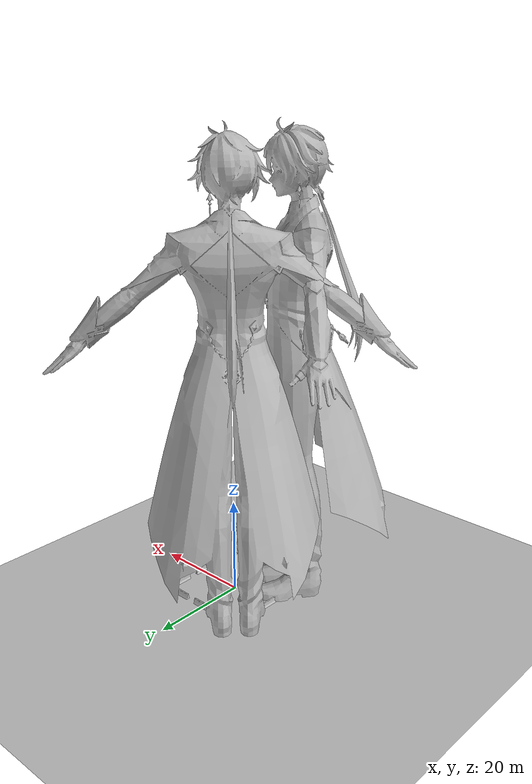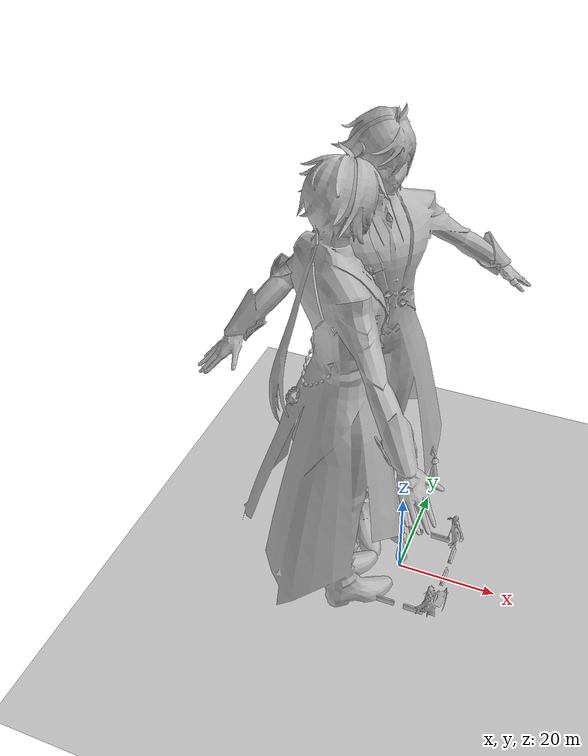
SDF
<sdf version="1.6">
 <world name="default">
  <physics name="default_physics" default="0" type="ode">
   <max_step_size>0.001</max_step_size>
   <real_time_factor>1</real_time_factor>
   <real_time_update_rate>1000</real_time_update_rate>
  </physics>
  <gravity>0.0 0.0 -9.81</gravity>
  <scene><ambient>1.0 1.0 1.0 1</ambient><background>1.0 1.0 1.0 1</background><shadows>0</shadows></scene>
  <include><uri>model://asphalt_plane</uri><name>asphalt_plane</name></include>
  <include>
   <uri>model://jersey_barrier</uri>
   <name>jersey_barrier_1</name>
   <pose>9.6 0.0 0.2 0 0 1.57</pose>
  </include>
  <include>
   <uri>model://jersey_barrier</uri>
   <name>jersey_barrier_2</name>
   <pose>9.6 -6.0 0.2 0 0 1.57</pose>
  </include>
  <include>
   <uri>model://jersey_barrier</uri>
   <name>jersey_barrier_3</name>
   <pose>9.6 6.0 0.2 0 0 1.57</pose>
  </include>
  <include>
   <uri>model://jersey_barrier</uri>
   <name>jersey_barrier_4</name>
   <pose>-9.6 0.0 0.2 0 0 1.57</pose>
  </include>
  <include>
   <uri>model://jersey_barrier</uri>
   <name>jersey_barrier_5</name>
   <pose>-9.6 -6.0 0.2 0 0 1.57</pose>
  </include>
  <include>
   <uri>model://jersey_barrier</uri>
   <name>jersey_barrier_6</name>
   <pose>-9.6 6.0 0.2 0 0 1.57</pose>
  </include>
  <include>
   <uri>model://jersey_barrier</uri>
   <name>jersey_barrier_7</name>
   <pose>0.0 9.6 0.2 0 0 0</pose>
  </include>
  <include>
   <uri>model://jersey_barrier</uri>
   <name>jersey_barrier_8</name>
   <pose>6.0 9.6 0.2 0 0 0</pose>
  </include>
  <include>
   <uri>model://jersey_barrier</uri>
   <name>jersey_barrier_9</name>
   <pose>-6.0 9.6 0.2 0 0 0</pose>
  </include>
  <include>
   <uri>model://jersey_barrier</uri>
   <name>jersey_barrier_10</name>
   <pose>0.0 -9.6 0.2 0 0 0</pose>
  </include>
  <include>
   <uri>model://jersey_barrier</uri>
   <name>jersey_barrier_11</name>
   <pose>6.0 -9.6 0.2 0 0 0</pose>
  </include>
  <include>
   <uri>model://jersey_barrier</uri>
   <name>jersey_barrier_12</name>
   <pose>-6.0 -9.6 0.2 0 0 0</pose>
  </include>
  <include><uri>model://zhongli</uri><name>zhongli</name><pose>9.0 9.0 0.05 0 0 -0.785</pose></include>
  <include>
   <uri>model://raiden_shogun</uri>
   <name>raiden_shogun</name>
   <pose>9.0 -9.0 0.05 0 0 3.25</pose>
  </include>
  <include><uri>model://furina</uri><name>furina_1</name><pose>-9.0 9.0 0.05 0 0 0.785</pose></include>
  <include><uri>model://nahida</uri><name>nahida</name><pose>-9.0 -9.0 0.05 0 0 2.355</pose></include>
  <light name="sun" type="directional">
   <cast_shadows>false</cast_shadows>
   <pose>0 0 10 0 0 0</pose>
   <diffuse>0.8 0.8 0.8 1</diffuse>
   <specular>0.2 0.2 0.2 1</specular>
   <attenuation>
    <range>1000</range>
    <constant>0.9</constant>
    <linear>0.01</linear>
    <quadratic>0.001</quadratic>
   </attenuation>
   <direction>-0.5 0.1 -0.9</direction>
  </light>
 </world>
</sdf>

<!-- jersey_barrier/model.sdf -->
<sdf version="1.5">
  <model name="jersey_barrier">
    <static>false</static>
    <link name="link">
      <inertial>
        <mass>2</mass>
        <inertia>
          <ixx>0.041666667</ixx>
          <ixy>0</ixy>
          <ixz>0</ixz>
          <iyy>0.056666667</iyy>
          <iyz>0</iyz>
          <izz>0.068333333</izz>
        </inertia>
      </inertial>
      <visual name="visual">
        <geometry>
          <mesh>
            <uri>meshes/jersey_barrier.dae</uri>
          </mesh>
        </geometry>
      </visual>
      <collision name="upright">
        <pose>0 0 0.5715 0 0 0</pose>
        <geometry>
          <box>
            <size>4.06542 0.3063 1.143</size>
          </box>
        </geometry>
      </collision>
      <collision name="base">
        <pose>0 0 0.032258 0 0 0</pose>
        <geometry>
          <box>
            <size>4.06542 0.8107 0.064516</size>
          </box>
        </geometry>
      </collision>
      <collision name="base2">
        <pose>0 0 0.1 0 0 0</pose>
        <geometry>
          <box>
            <size>4.06542 0.65 0.1</size>
          </box>
        </geometry>
      </collision>
      <collision name="base3">
        <pose>0 0 0.2 0 0 0</pose>
        <geometry>
          <box>
            <size>4.06542 0.5 0.1</size>
          </box>
        </geometry>
      </collision>
      <collision name="left-angle">
        <pose>0 -0.224 0.2401 0.9 0 0</pose>
        <geometry>
          <box>
            <size>4.06542 0.5 0.064516</size>
          </box>
        </geometry>
      </collision>
      <collision name="right-angle">
        <pose>0 0.224 0.2401 -0.9 0 0</pose>
        <geometry>
          <box>
            <size>4.06542 0.5 0.064516</size>
          </box>
        </geometry>
      </collision>
    </link>
  </model>
</sdf>

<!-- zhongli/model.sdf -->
<sdf version="1.6">
  <model name="Zhongli">
    <static>true</static>
    <link name="zhongli">
      <visual name="visual">
        <geometry>
          <mesh>
            <uri>meshes/untitled.dae</uri>
            <scale>0.4 0.4 0.4</scale>
          </mesh>
        </geometry>
      </visual>
      <collision name="collision_0">
        <geometry>
          <mesh>
            <uri>meshes/untitled.dae</uri>
            <scale>0.4 0.4 0.4</scale>
          </mesh>
        </geometry>
      </collision>
    </link>
  </model>
</sdf>

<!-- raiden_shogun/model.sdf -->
<sdf version="1.6">
  <model name="raiden_shogun">
    <static>true</static>
    <link name="raiden_shogun">
      <visual name="visual">
        <geometry>
          <mesh>
            <uri>meshes/untitled.dae</uri>
            <scale>0.4 0.4 0.4</scale>
          </mesh>
        </geometry>
      </visual>
      <collision name="collision_0">
        <geometry>
          <mesh>
            <uri>meshes/untitled.dae</uri>
            <scale>0.4 0.4 0.4</scale>
          </mesh>
        </geometry>
      </collision>
    </link>
  </model>
</sdf>

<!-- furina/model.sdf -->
<sdf version="1.6">
  <model name="Furina">
    <static>true</static>
    <link name="furina">
      <visual name="visual">
        <geometry>
          <mesh>
            <uri>meshes/untitled.dae</uri>
            <scale>4.0 4.0 4.0</scale>
          </mesh>
        </geometry>
      </visual>
      <collision name="collision_0">
        <geometry>
          <mesh>
            <uri>meshes/untitled.dae</uri>
            <scale>4.0 4.0 4.0</scale>
          </mesh>
        </geometry>
      </collision>
    </link>
  </model>
</sdf>

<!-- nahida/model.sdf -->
<sdf version="1.6">
  <model name="nahida">
    <static>true</static>
    <link name="nahida">
      <visual name="visual">
        <geometry>
          <mesh>
            <uri>meshes/untitled.dae</uri>
            <scale>4.0 4.0 4.0</scale>
          </mesh>
        </geometry>
      </visual>
      <collision name="collision_0">
        <geometry>
          <mesh>
            <uri>meshes/untitled.dae</uri>
            <scale>4.0 4.0 4.0</scale>
          </mesh>
        </geometry>
      </collision>
    </link>
  </model>
</sdf>
